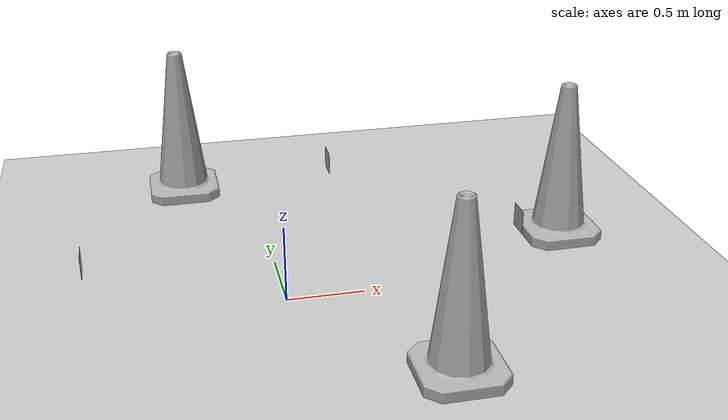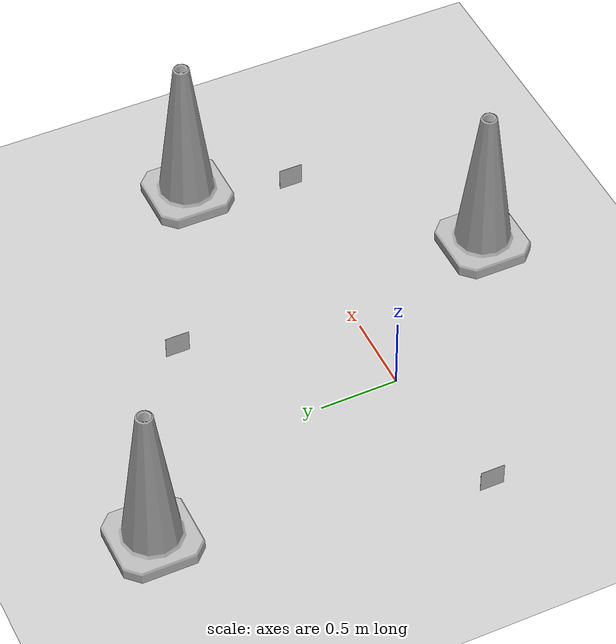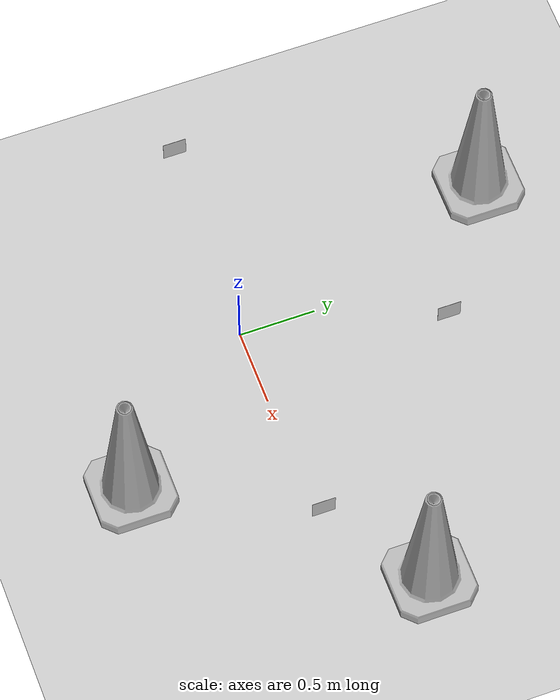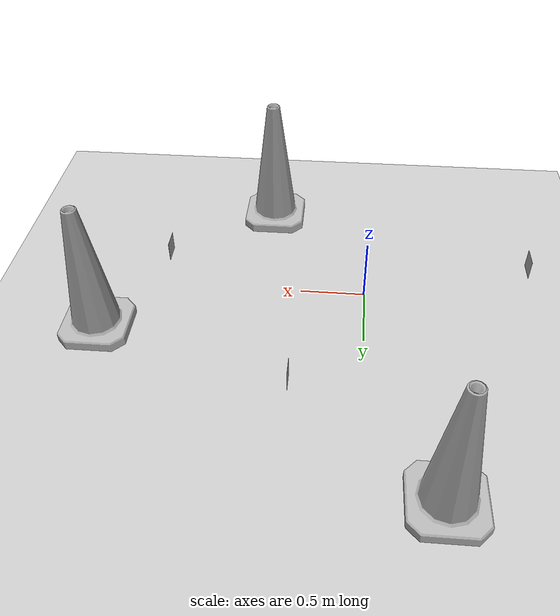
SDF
<sdf version="1.4">
 <world name="apriltag_world">
  <plugin name="gazebo_ros_state" filename="libgazebo_ros_state.so">
   <ros><namespace>/</namespace></ros>
   <update_rate>50.0</update_rate>
  </plugin>
  <include><uri>model://asphalt_plane</uri></include>
  <include><uri>model://sun</uri></include>
  <physics type="ode">
   <max_step_size>0.001</max_step_size>
   <real_time_factor>1</real_time_factor>
   <real_time_update_rate>1000</real_time_update_rate>
  </physics>
  <include><uri>model://apriltag_0</uri><pose>1.5 0.0 0.4 0 0 1.5708</pose><name>apriltag_0</name></include>
  <include><uri>model://apriltag_1</uri><pose>0.5 1.2 0.4 0 0 1.5708</pose><name>apriltag_1</name></include>
  <include><uri>model://apriltag_2</uri><pose>-1.2 0.0 0.4 0 0 1.5708</pose><name>apriltag_2</name></include>
  <include><uri>model://construction_cone</uri><pose>0.8 -1.0 0 0 0 0</pose><name>cone_1</name></include>
  <include><uri>model://construction_cone</uri><pose>2.0 0.5 0 0 0 0</pose><name>cone_2</name></include>
  <include><uri>model://construction_cone</uri><pose>-0.5 1.8 0 0 0 0</pose><name>cone_3</name></include>
 </world>
</sdf>

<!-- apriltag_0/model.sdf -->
<sdf version="1.5">
  <model name="apriltag_0">
    <static>true</static>
    <link name="link">
      <pose>0 0 0 0 0 0</pose>
      <visual name="visual">
        <geometry>
          <box>
            <size>0.15 0.001 0.15</size>
          </box>
        </geometry>
        <material>
          <script>
            <uri>model://apriltag_0/materials/scripts</uri>
            <uri>model://apriltag_0/materials/textures</uri>
            <name>AprilTag/Tag0</name>
          </script>
        </material>
      </visual>
      <collision name="collision">
        <geometry>
          <box>
            <size>0.15 0.001 0.15</size>
          </box>
        </geometry>
      </collision>
    </link>
  </model>
</sdf>

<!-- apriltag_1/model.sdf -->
<sdf version="1.5">
  <model name="apriltag_1">
    <static>true</static>
    <link name="link">
      <pose>0 0 0 0 0 0</pose>
      <visual name="visual">
        <geometry>
          <box>
            <size>0.15 0.001 0.15</size>
          </box>
        </geometry>
        <material>
          <script>
            <uri>model://apriltag_1/materials/scripts</uri>
            <uri>model://apriltag_1/materials/textures</uri>
            <name>AprilTag/Tag1</name>
          </script>
        </material>
      </visual>
      <collision name="collision">
        <geometry>
          <box>
            <size>0.15 0.001 0.15</size>
          </box>
        </geometry>
      </collision>
    </link>
  </model>
</sdf>

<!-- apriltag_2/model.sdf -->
<sdf version="1.5">
  <model name="apriltag_2">
    <static>true</static>
    <link name="link">
      <pose>0 0 0 0 0 0</pose>
      <visual name="visual">
        <geometry>
          <box>
            <size>0.15 0.001 0.15</size>
          </box>
        </geometry>
        <material>
          <script>
            <uri>model://apriltag_2/materials/scripts</uri>
            <uri>model://apriltag_2/materials/textures</uri>
            <name>AprilTag/Tag2</name>
          </script>
        </material>
      </visual>
      <collision name="collision">
        <geometry>
          <box>
            <size>0.15 0.001 0.15</size>
          </box>
        </geometry>
      </collision>
    </link>
  </model>
</sdf>

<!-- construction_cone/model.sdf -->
<sdf version="1.5">
  <model name="Construction Cone">
    <link name="link">
      <collision name="collision">
        <geometry>
          <mesh>
            <scale>10 10 10</scale>
            <uri>file://isr-testbed/construction_cone/meshes/construction_cone.dae</uri>
          </mesh>
        </geometry>
      </collision>
      <visual name="visual">
        <geometry>
          <mesh>
            <scale>10 10 10</scale>
            <uri>file://isr-testbed/construction_cone/meshes/construction_cone.dae</uri>
          </mesh>
        </geometry>
      </visual>
    </link>
  </model>
</sdf>
